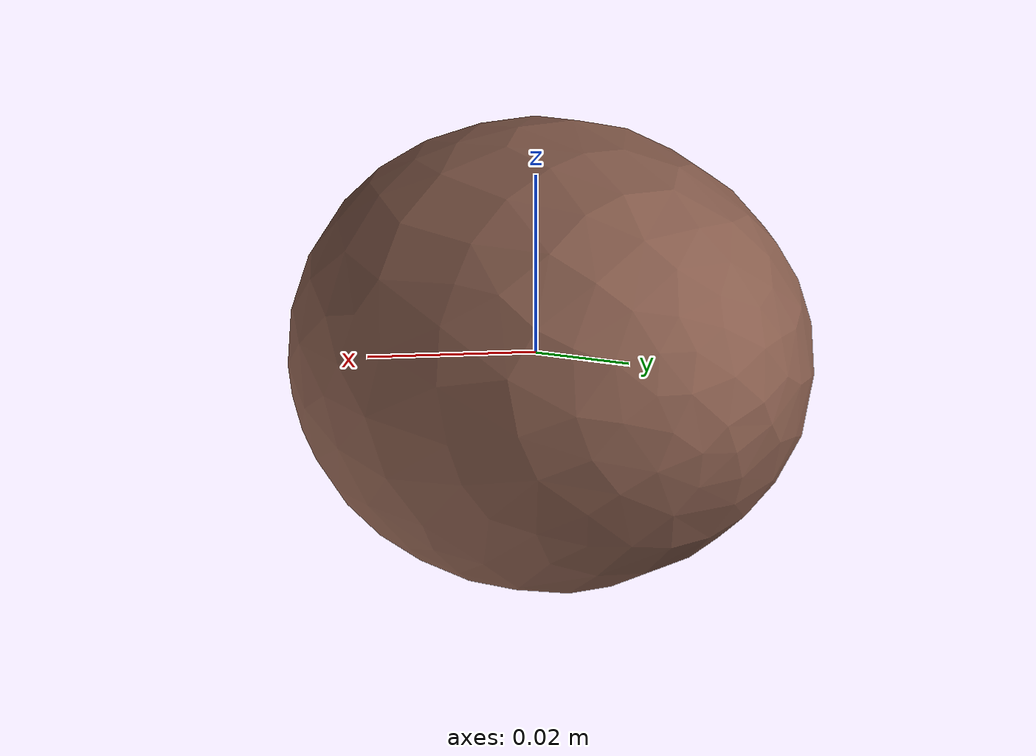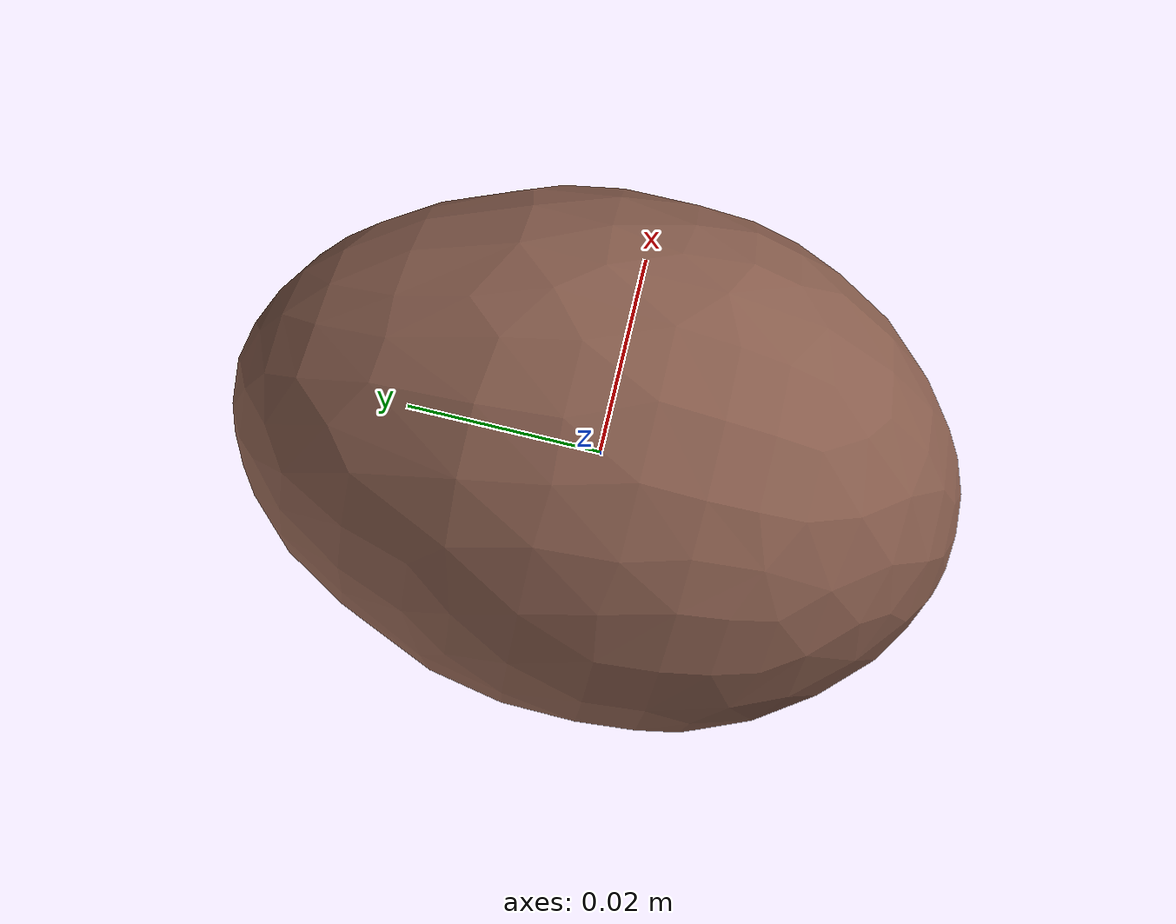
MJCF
<mujoco model="Egg_22">
  <compiler autolimits="true" boundmass="0.01" angle="radian"/>
  <default>
    <default class="/">
      <default class="__VISUAL_MJT__">
        <geom contype="0" conaffinity="0" group="0"/>
      </default>
      <default class="__STRUCTURAL_MJT__">
        <geom contype="8" conaffinity="15" group="4" friction="0.90000000000000002 0.90000000000000002 0.001" solref="0.025000000000000001 1" solimp="0.998 0.998 0.001"/>
      </default>
      <default class="__DYNAMIC_MJT__">
        <geom contype="1" conaffinity="15" group="4" friction="0.90000000000000002 0.90000000000000002 0.001" solref="0.025000000000000001 1" solimp="0.998 0.998 0.001"/>
      </default>
    </default>
  </default>
  <asset>
    <material name="material_Egg4_Mat" class="/" specular="0.5" shininess="0.5" rgba="0.53676469999999998 0.36726049999999999 0.3039036 1"/>
    <mesh name="Egg_22_egg_22" class="/" file="Egg_22_egg_22/Egg_22_egg_22.obj" scale="1 1 1"/>
  </asset>
  <worldbody>
    <body name="Egg_22">
      <joint name="Egg_22_free" class="/" type="free" pos="0 0 0" axis="0 0 1" stiffness="0" range="0 0" armature="0" damping="0.10000000000000001" frictionloss="0"/>
      <body name="Egg_22_egg_22" pos="-0.00014999999999999999 0 -0.0001" quat="1 0 0 0">
        <geom name="Egg_22_egg_22" class="__VISUAL_MJT__" type="mesh" material="material_Egg4_Mat" shellinertia="true" mesh="Egg_22_egg_22"/>
        <geom name="Egg_22_PrimitiveCollider_0" class="__DYNAMIC_MJT__" type="capsule" size="0.023754846304655075 0.012771431356668472" rgba="0 1 0 1" pos="-0 0 0" quat="0.70710678118654757 0.70710678118654746 0 0"/>
      </body>
    </body>
  </worldbody>
</mujoco>
